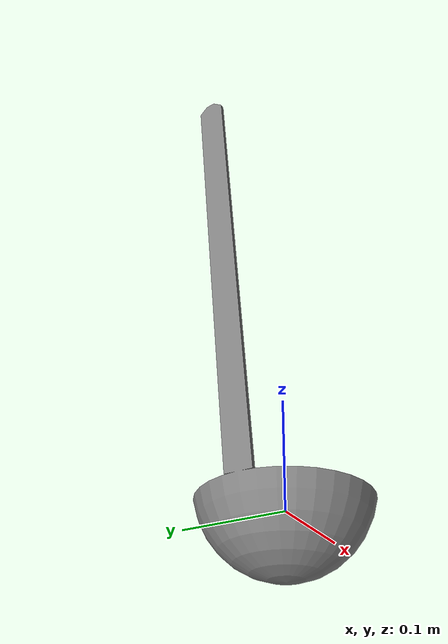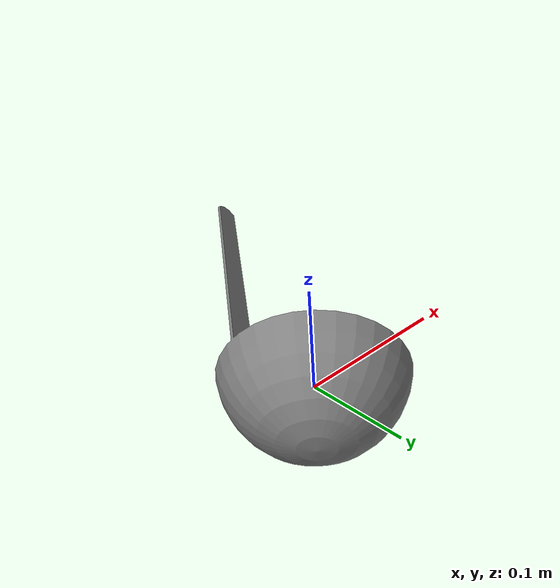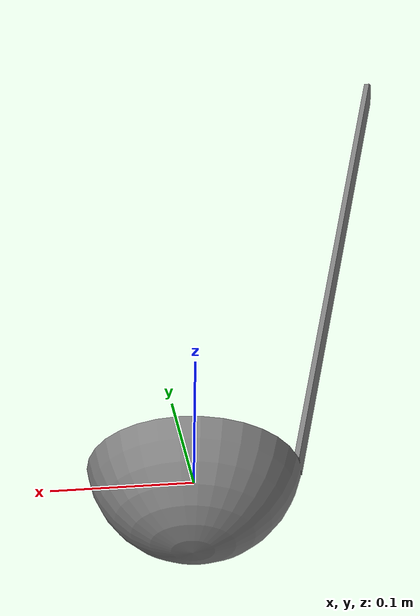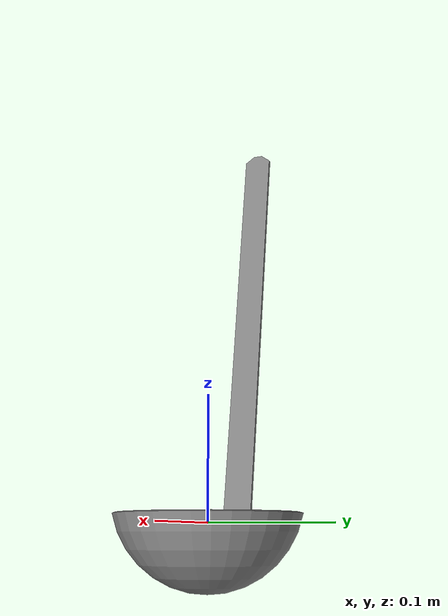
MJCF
<?xml version="1.0"?>
<mujoco model="soup_spoon">
    <compiler angle="radian" meshdir="../meshes/" texturedir="../textures/" autolimits="true" inertiafromgeom="false"/>
    <default>
        <default class="soup_spoon_visual">
            <geom contype="0" conaffinity="0" />
        </default>
        <default class="soup_spoon_collision">
            <geom rgba="0.9 0.9 0.9 0.0" />
        </default>
    </default>
    <asset>
        <mesh name="SoupSpoon" file="obj/SoupSpoon.obj" />
        <mesh name="SoupSpoon_001" file="stl/SoupSpoon_001.stl" />
        <mesh name="SoupSpoon_002" file="stl/SoupSpoon_002.stl" />
        <mesh name="SoupSpoon_003" file="stl/SoupSpoon_003.stl" />
        <mesh name="SoupSpoon_004" file="stl/SoupSpoon_004.stl" />
        <mesh name="SoupSpoon_005" file="stl/SoupSpoon_005.stl" />
        <mesh name="SoupSpoon_006" file="stl/SoupSpoon_006.stl" />
        <mesh name="SoupSpoon_007" file="stl/SoupSpoon_007.stl" />
        <mesh name="SoupSpoon_008" file="stl/SoupSpoon_008.stl" />
        <mesh name="SoupSpoon_009" file="stl/SoupSpoon_009.stl" />
        <mesh name="SoupSpoon_010" file="stl/SoupSpoon_010.stl" />
        <mesh name="SoupSpoon_011" file="stl/SoupSpoon_011.stl" />
        <mesh name="SoupSpoon_012" file="stl/SoupSpoon_012.stl" />
        <mesh name="SoupSpoon_013" file="stl/SoupSpoon_013.stl" />
        <mesh name="SoupSpoon_014" file="stl/SoupSpoon_014.stl" />
        <mesh name="SoupSpoon_015" file="stl/SoupSpoon_015.stl" />
        <mesh name="SoupSpoon_016" file="stl/SoupSpoon_016.stl" />
        <mesh name="SoupSpoon_017" file="stl/SoupSpoon_017.stl" />
        <mesh name="SoupSpoon_018" file="stl/SoupSpoon_018.stl" />
        <mesh name="SoupSpoon_019" file="stl/SoupSpoon_019.stl" />
        <mesh name="SoupSpoon_020" file="stl/SoupSpoon_020.stl" />
        <mesh name="SoupSpoon_021" file="stl/SoupSpoon_021.stl" />
        <mesh name="SoupSpoon_022" file="stl/SoupSpoon_022.stl" />
        <mesh name="SoupSpoon_023" file="stl/SoupSpoon_023.stl" />
        <mesh name="SoupSpoon_024" file="stl/SoupSpoon_024.stl" />
        <mesh name="SoupSpoon_025" file="stl/SoupSpoon_025.stl" />
        <mesh name="SoupSpoon_026" file="stl/SoupSpoon_026.stl" />
        <mesh name="SoupSpoon_027" file="stl/SoupSpoon_027.stl" />
        <mesh name="SoupSpoon_028" file="stl/SoupSpoon_028.stl" />
        <mesh name="SoupSpoon_029" file="stl/SoupSpoon_029.stl" />
        <mesh name="SoupSpoon_030" file="stl/SoupSpoon_030.stl" />
        <mesh name="SoupSpoon_031" file="stl/SoupSpoon_031.stl" />
        <mesh name="SoupSpoon_032" file="stl/SoupSpoon_032.stl" />
        <mesh name="SoupSpoon_033" file="stl/SoupSpoon_033.stl" />
        <mesh name="SoupSpoon_034" file="stl/SoupSpoon_034.stl" />
        <mesh name="SoupSpoon_035" file="stl/SoupSpoon_035.stl" />
        <mesh name="SoupSpoon_036" file="stl/SoupSpoon_036.stl" />
        <mesh name="SoupSpoon_037" file="stl/SoupSpoon_037.stl" />
        <mesh name="SoupSpoon_038" file="stl/SoupSpoon_038.stl" />
        <mesh name="SoupSpoon_039" file="stl/SoupSpoon_039.stl" />
        <mesh name="SoupSpoon_040" file="stl/SoupSpoon_040.stl" />
        <mesh name="SoupSpoon_041" file="stl/SoupSpoon_041.stl" />
        <mesh name="SoupSpoon_042" file="stl/SoupSpoon_042.stl" />
        <mesh name="SoupSpoon_043" file="stl/SoupSpoon_043.stl" />
        <mesh name="SoupSpoon_044" file="stl/SoupSpoon_044.stl" />
        <mesh name="SoupSpoon_045" file="stl/SoupSpoon_045.stl" />
        <mesh name="SoupSpoon_046" file="stl/SoupSpoon_046.stl" />
        <mesh name="SoupSpoon_047" file="stl/SoupSpoon_047.stl" />
        <mesh name="SoupSpoon_048" file="stl/SoupSpoon_048.stl" />
        <mesh name="SoupSpoon_049" file="stl/SoupSpoon_049.stl" />
        <mesh name="SoupSpoon_050" file="stl/SoupSpoon_050.stl" />
        <mesh name="SoupSpoon_051" file="stl/SoupSpoon_051.stl" />
        <mesh name="SoupSpoon_052" file="stl/SoupSpoon_052.stl" />
        <mesh name="SoupSpoon_053" file="stl/SoupSpoon_053.stl" />
        <mesh name="SoupSpoon_054" file="stl/SoupSpoon_054.stl" />
        <mesh name="SoupSpoon_055" file="stl/SoupSpoon_055.stl" />
        <mesh name="SoupSpoon_056" file="stl/SoupSpoon_056.stl" />
        <mesh name="SoupSpoon_057" file="stl/SoupSpoon_057.stl" />
        <mesh name="SoupSpoon_058" file="stl/SoupSpoon_058.stl" />
        <mesh name="SoupSpoon_059" file="stl/SoupSpoon_059.stl" />
        <mesh name="SoupSpoon_060" file="stl/SoupSpoon_060.stl" />
        <mesh name="SoupSpoon_061" file="stl/SoupSpoon_061.stl" />
        <mesh name="SoupSpoon_062" file="stl/SoupSpoon_062.stl" />
        <mesh name="SoupSpoon_063" file="stl/SoupSpoon_063.stl" />
        <mesh name="SoupSpoon_064" file="stl/SoupSpoon_064.stl" />
        <mesh name="SoupSpoon_065" file="stl/SoupSpoon_065.stl" />
        <mesh name="SoupSpoon_066" file="stl/SoupSpoon_066.stl" />
        <mesh name="SoupSpoon_067" file="stl/SoupSpoon_067.stl" />
        <mesh name="SoupSpoon_068" file="stl/SoupSpoon_068.stl" />
        <mesh name="SoupSpoon_069" file="stl/SoupSpoon_069.stl" />
        <mesh name="SoupSpoon_070" file="stl/SoupSpoon_070.stl" />
        <mesh name="SoupSpoon_071" file="stl/SoupSpoon_071.stl" />
        <mesh name="SoupSpoon_072" file="stl/SoupSpoon_072.stl" />
        <mesh name="SoupSpoon_073" file="stl/SoupSpoon_073.stl" />
        <mesh name="SoupSpoon_074" file="stl/SoupSpoon_074.stl" />
        <mesh name="SoupSpoon_075" file="stl/SoupSpoon_075.stl" />
        <mesh name="SoupSpoon_076" file="stl/SoupSpoon_076.stl" />
        <mesh name="SoupSpoon_077" file="stl/SoupSpoon_077.stl" />
        <mesh name="SoupSpoon_078" file="stl/SoupSpoon_078.stl" />
        <mesh name="SoupSpoon_079" file="stl/SoupSpoon_079.stl" />
        <mesh name="SoupSpoon_080" file="stl/SoupSpoon_080.stl" />
        <mesh name="SoupSpoon_081" file="stl/SoupSpoon_081.stl" />
        <mesh name="SoupSpoon_082" file="stl/SoupSpoon_082.stl" />
        <mesh name="SoupSpoon_083" file="stl/SoupSpoon_083.stl" />
        <mesh name="SoupSpoon_084" file="stl/SoupSpoon_084.stl" />
        <mesh name="SoupSpoon_085" file="stl/SoupSpoon_085.stl" />
        <mesh name="SoupSpoon_086" file="stl/SoupSpoon_086.stl" />
        <mesh name="SoupSpoon_087" file="stl/SoupSpoon_087.stl" />
        <mesh name="SoupSpoon_088" file="stl/SoupSpoon_088.stl" />
        <mesh name="SoupSpoon_089" file="stl/SoupSpoon_089.stl" />
        <mesh name="SoupSpoon_090" file="stl/SoupSpoon_090.stl" />
        <mesh name="SoupSpoon_091" file="stl/SoupSpoon_091.stl" />
        <mesh name="SoupSpoon_092" file="stl/SoupSpoon_092.stl" />
        <mesh name="SoupSpoon_093" file="stl/SoupSpoon_093.stl" />
        <mesh name="SoupSpoon_094" file="stl/SoupSpoon_094.stl" />
        <mesh name="SoupSpoon_095" file="stl/SoupSpoon_095.stl" />
        <mesh name="SoupSpoon_096" file="stl/SoupSpoon_096.stl" />
        <mesh name="SoupSpoon_097" file="stl/SoupSpoon_097.stl" />
        <mesh name="SoupSpoon_098" file="stl/SoupSpoon_098.stl" />
        <mesh name="SoupSpoon_099" file="stl/SoupSpoon_099.stl" />
        <mesh name="SoupSpoon_100" file="stl/SoupSpoon_100.stl" />
        <mesh name="SoupSpoon_101" file="stl/SoupSpoon_101.stl" />
        <mesh name="SoupSpoon_102" file="stl/SoupSpoon_102.stl" />
        <mesh name="SoupSpoon_103" file="stl/SoupSpoon_103.stl" />
        <mesh name="SoupSpoon_104" file="stl/SoupSpoon_104.stl" />
        <mesh name="SoupSpoon_105" file="stl/SoupSpoon_105.stl" />
        <mesh name="SoupSpoon_106" file="stl/SoupSpoon_106.stl" />
        <mesh name="SoupSpoon_107" file="stl/SoupSpoon_107.stl" />
        <mesh name="SoupSpoon_108" file="stl/SoupSpoon_108.stl" />
        <mesh name="SoupSpoon_109" file="stl/SoupSpoon_109.stl" />
        <mesh name="SoupSpoon_110" file="stl/SoupSpoon_110.stl" />
        <mesh name="SoupSpoon_111" file="stl/SoupSpoon_111.stl" />
        <mesh name="SoupSpoon_112" file="stl/SoupSpoon_112.stl" />
        <mesh name="SoupSpoon_113" file="stl/SoupSpoon_113.stl" />
        <mesh name="SoupSpoon_114" file="stl/SoupSpoon_114.stl" />
        <mesh name="SoupSpoon_115" file="stl/SoupSpoon_115.stl" />
        <mesh name="SoupSpoon_116" file="stl/SoupSpoon_116.stl" />
        <mesh name="SoupSpoon_117" file="stl/SoupSpoon_117.stl" />
        <mesh name="SoupSpoon_118" file="stl/SoupSpoon_118.stl" />
        <mesh name="SoupSpoon_119" file="stl/SoupSpoon_119.stl" />
        <mesh name="SoupSpoon_120" file="stl/SoupSpoon_120.stl" />
        <mesh name="SoupSpoon_121" file="stl/SoupSpoon_121.stl" />
        <mesh name="SoupSpoon_122" file="stl/SoupSpoon_122.stl" />
        <mesh name="SoupSpoon_123" file="stl/SoupSpoon_123.stl" />
        <mesh name="SoupSpoon_124" file="stl/SoupSpoon_124.stl" />
        <mesh name="SoupSpoon_125" file="stl/SoupSpoon_125.stl" />
        <mesh name="SoupSpoon_126" file="stl/SoupSpoon_126.stl" />
        <mesh name="SoupSpoon_127" file="stl/SoupSpoon_127.stl" />
        <mesh name="SoupSpoon_128" file="stl/SoupSpoon_128.stl" />
        <mesh name="SoupSpoon_129" file="stl/SoupSpoon_129.stl" />
        <mesh name="SoupSpoon_130" file="stl/SoupSpoon_130.stl" />
    </asset>
    <worldbody>
        <body name="soup_spoon" pos="0.0 0.0 0.0" quat="1.0 0.0 0.0 0.0" >
            <freejoint/>
            <inertial mass="0.014195333234965801" pos="-0.015411965548992157 -1.4716490248645187e-09 0.008130344562232494" quat="0.5998083353042603 0.5998082756996155 0.3744729161262512 -0.374472975730896" diaginertia="9.091835636354517e-06 5.7811525039142e-05 5.884267739020288e-05"/>
            <geom name="SoupSpoon" type="mesh" pos="0.0 0.0 0.0" quat="1.0 0.0 0.0 0.0" mesh="SoupSpoon" class="soup_spoon_visual"/>
            <geom name="SoupSpoon_001" type="mesh" pos="0.0 0.0 0.0" quat="1.0 0.0 0.0 0.0" mesh="SoupSpoon_001" class="soup_spoon_collision"/>
            <geom name="SoupSpoon_002" type="mesh" pos="0.0 0.0 0.0" quat="1.0 0.0 0.0 0.0" mesh="SoupSpoon_002" class="soup_spoon_collision"/>
            <geom name="SoupSpoon_003" type="mesh" pos="0.0 0.0 0.0" quat="1.0 0.0 0.0 0.0" mesh="SoupSpoon_003" class="soup_spoon_collision"/>
            <geom name="SoupSpoon_004" type="mesh" pos="0.0 0.0 0.0" quat="1.0 0.0 0.0 0.0" mesh="SoupSpoon_004" class="soup_spoon_collision"/>
            <geom name="SoupSpoon_005" type="mesh" pos="0.0 0.0 0.0" quat="1.0 0.0 0.0 0.0" mesh="SoupSpoon_005" class="soup_spoon_collision"/>
            <geom name="SoupSpoon_006" type="mesh" pos="0.0 0.0 0.0" quat="1.0 0.0 0.0 0.0" mesh="SoupSpoon_006" class="soup_spoon_collision"/>
            <geom name="SoupSpoon_007" type="mesh" pos="0.0 0.0 0.0" quat="1.0 0.0 0.0 0.0" mesh="SoupSpoon_007" class="soup_spoon_collision"/>
            <geom name="SoupSpoon_008" type="mesh" pos="0.0 0.0 0.0" quat="1.0 0.0 0.0 0.0" mesh="SoupSpoon_008" class="soup_spoon_collision"/>
            <geom name="SoupSpoon_009" type="mesh" pos="0.0 0.0 0.0" quat="1.0 0.0 0.0 0.0" mesh="SoupSpoon_009" class="soup_spoon_collision"/>
            <geom name="SoupSpoon_010" type="mesh" pos="0.0 0.0 0.0" quat="1.0 0.0 0.0 0.0" mesh="SoupSpoon_010" class="soup_spoon_collision"/>
            <geom name="SoupSpoon_011" type="mesh" pos="0.0 0.0 0.0" quat="1.0 0.0 0.0 0.0" mesh="SoupSpoon_011" class="soup_spoon_collision"/>
            <geom name="SoupSpoon_012" type="mesh" pos="0.0 0.0 0.0" quat="1.0 0.0 0.0 0.0" mesh="SoupSpoon_012" class="soup_spoon_collision"/>
            <geom name="SoupSpoon_013" type="mesh" pos="0.0 0.0 0.0" quat="1.0 0.0 0.0 0.0" mesh="SoupSpoon_013" class="soup_spoon_collision"/>
            <geom name="SoupSpoon_014" type="mesh" pos="0.0 0.0 0.0" quat="1.0 0.0 0.0 0.0" mesh="SoupSpoon_014" class="soup_spoon_collision"/>
            <geom name="SoupSpoon_015" type="mesh" pos="0.0 0.0 0.0" quat="1.0 0.0 0.0 0.0" mesh="SoupSpoon_015" class="soup_spoon_collision"/>
            <geom name="SoupSpoon_016" type="mesh" pos="0.0 0.0 0.0" quat="1.0 0.0 0.0 0.0" mesh="SoupSpoon_016" class="soup_spoon_collision"/>
            <geom name="SoupSpoon_017" type="mesh" pos="0.0 0.0 0.0" quat="1.0 0.0 0.0 0.0" mesh="SoupSpoon_017" class="soup_spoon_collision"/>
            <geom name="SoupSpoon_018" type="mesh" pos="0.0 0.0 0.0" quat="1.0 0.0 0.0 0.0" mesh="SoupSpoon_018" class="soup_spoon_collision"/>
            <geom name="SoupSpoon_019" type="mesh" pos="0.0 0.0 0.0" quat="1.0 0.0 0.0 0.0" mesh="SoupSpoon_019" class="soup_spoon_collision"/>
            <geom name="SoupSpoon_020" type="mesh" pos="0.0 0.0 0.0" quat="1.0 0.0 0.0 0.0" mesh="SoupSpoon_020" class="soup_spoon_collision"/>
            <geom name="SoupSpoon_021" type="mesh" pos="0.0 0.0 0.0" quat="1.0 0.0 0.0 0.0" mesh="SoupSpoon_021" class="soup_spoon_collision"/>
            <geom name="SoupSpoon_022" type="mesh" pos="0.0 0.0 0.0" quat="1.0 0.0 0.0 0.0" mesh="SoupSpoon_022" class="soup_spoon_collision"/>
            <geom name="SoupSpoon_023" type="mesh" pos="0.0 0.0 0.0" quat="1.0 0.0 0.0 0.0" mesh="SoupSpoon_023" class="soup_spoon_collision"/>
            <geom name="SoupSpoon_024" type="mesh" pos="0.0 0.0 0.0" quat="1.0 0.0 0.0 0.0" mesh="SoupSpoon_024" class="soup_spoon_collision"/>
            <geom name="SoupSpoon_025" type="mesh" pos="0.0 0.0 0.0" quat="1.0 0.0 0.0 0.0" mesh="SoupSpoon_025" class="soup_spoon_collision"/>
            <geom name="SoupSpoon_026" type="mesh" pos="0.0 0.0 0.0" quat="1.0 0.0 0.0 0.0" mesh="SoupSpoon_026" class="soup_spoon_collision"/>
            <geom name="SoupSpoon_027" type="mesh" pos="0.0 0.0 0.0" quat="1.0 0.0 0.0 0.0" mesh="SoupSpoon_027" class="soup_spoon_collision"/>
            <geom name="SoupSpoon_028" type="mesh" pos="0.0 0.0 0.0" quat="1.0 0.0 0.0 0.0" mesh="SoupSpoon_028" class="soup_spoon_collision"/>
            <geom name="SoupSpoon_029" type="mesh" pos="0.0 0.0 0.0" quat="1.0 0.0 0.0 0.0" mesh="SoupSpoon_029" class="soup_spoon_collision"/>
            <geom name="SoupSpoon_030" type="mesh" pos="0.0 0.0 0.0" quat="1.0 0.0 0.0 0.0" mesh="SoupSpoon_030" class="soup_spoon_collision"/>
            <geom name="SoupSpoon_031" type="mesh" pos="0.0 0.0 0.0" quat="1.0 0.0 0.0 0.0" mesh="SoupSpoon_031" class="soup_spoon_collision"/>
            <geom name="SoupSpoon_032" type="mesh" pos="0.0 0.0 0.0" quat="1.0 0.0 0.0 0.0" mesh="SoupSpoon_032" class="soup_spoon_collision"/>
            <geom name="SoupSpoon_033" type="mesh" pos="0.0 0.0 0.0" quat="1.0 0.0 0.0 0.0" mesh="SoupSpoon_033" class="soup_spoon_collision"/>
            <geom name="SoupSpoon_034" type="mesh" pos="0.0 0.0 0.0" quat="1.0 0.0 0.0 0.0" mesh="SoupSpoon_034" class="soup_spoon_collision"/>
            <geom name="SoupSpoon_035" type="mesh" pos="0.0 0.0 0.0" quat="1.0 0.0 0.0 0.0" mesh="SoupSpoon_035" class="soup_spoon_collision"/>
            <geom name="SoupSpoon_036" type="mesh" pos="0.0 0.0 0.0" quat="1.0 0.0 0.0 0.0" mesh="SoupSpoon_036" class="soup_spoon_collision"/>
            <geom name="SoupSpoon_037" type="mesh" pos="0.0 0.0 0.0" quat="1.0 0.0 0.0 0.0" mesh="SoupSpoon_037" class="soup_spoon_collision"/>
            <geom name="SoupSpoon_038" type="mesh" pos="0.0 0.0 0.0" quat="1.0 0.0 0.0 0.0" mesh="SoupSpoon_038" class="soup_spoon_collision"/>
            <geom name="SoupSpoon_039" type="mesh" pos="0.0 0.0 0.0" quat="1.0 0.0 0.0 0.0" mesh="SoupSpoon_039" class="soup_spoon_collision"/>
            <geom name="SoupSpoon_040" type="mesh" pos="0.0 0.0 0.0" quat="1.0 0.0 0.0 0.0" mesh="SoupSpoon_040" class="soup_spoon_collision"/>
            <geom name="SoupSpoon_041" type="mesh" pos="0.0 0.0 0.0" quat="1.0 0.0 0.0 0.0" mesh="SoupSpoon_041" class="soup_spoon_collision"/>
            <geom name="SoupSpoon_042" type="mesh" pos="0.0 0.0 0.0" quat="1.0 0.0 0.0 0.0" mesh="SoupSpoon_042" class="soup_spoon_collision"/>
            <geom name="SoupSpoon_043" type="mesh" pos="0.0 0.0 0.0" quat="1.0 0.0 0.0 0.0" mesh="SoupSpoon_043" class="soup_spoon_collision"/>
            <geom name="SoupSpoon_044" type="mesh" pos="0.0 0.0 0.0" quat="1.0 0.0 0.0 0.0" mesh="SoupSpoon_044" class="soup_spoon_collision"/>
            <geom name="SoupSpoon_045" type="mesh" pos="0.0 0.0 0.0" quat="1.0 0.0 0.0 0.0" mesh="SoupSpoon_045" class="soup_spoon_collision"/>
            <geom name="SoupSpoon_046" type="mesh" pos="0.0 0.0 0.0" quat="1.0 0.0 0.0 0.0" mesh="SoupSpoon_046" class="soup_spoon_collision"/>
            <geom name="SoupSpoon_047" type="mesh" pos="0.0 0.0 0.0" quat="1.0 0.0 0.0 0.0" mesh="SoupSpoon_047" class="soup_spoon_collision"/>
            <geom name="SoupSpoon_048" type="mesh" pos="0.0 0.0 0.0" quat="1.0 0.0 0.0 0.0" mesh="SoupSpoon_048" class="soup_spoon_collision"/>
            <geom name="SoupSpoon_049" type="mesh" pos="0.0 0.0 0.0" quat="1.0 0.0 0.0 0.0" mesh="SoupSpoon_049" class="soup_spoon_collision"/>
            <geom name="SoupSpoon_050" type="mesh" pos="0.0 0.0 0.0" quat="1.0 0.0 0.0 0.0" mesh="SoupSpoon_050" class="soup_spoon_collision"/>
            <geom name="SoupSpoon_051" type="mesh" pos="0.0 0.0 0.0" quat="1.0 0.0 0.0 0.0" mesh="SoupSpoon_051" class="soup_spoon_collision"/>
            <geom name="SoupSpoon_052" type="mesh" pos="0.0 0.0 0.0" quat="1.0 0.0 0.0 0.0" mesh="SoupSpoon_052" class="soup_spoon_collision"/>
            <geom name="SoupSpoon_053" type="mesh" pos="0.0 0.0 0.0" quat="1.0 0.0 0.0 0.0" mesh="SoupSpoon_053" class="soup_spoon_collision"/>
            <geom name="SoupSpoon_054" type="mesh" pos="0.0 0.0 0.0" quat="1.0 0.0 0.0 0.0" mesh="SoupSpoon_054" class="soup_spoon_collision"/>
            <geom name="SoupSpoon_055" type="mesh" pos="0.0 0.0 0.0" quat="1.0 0.0 0.0 0.0" mesh="SoupSpoon_055" class="soup_spoon_collision"/>
            <geom name="SoupSpoon_056" type="mesh" pos="0.0 0.0 0.0" quat="1.0 0.0 0.0 0.0" mesh="SoupSpoon_056" class="soup_spoon_collision"/>
            <geom name="SoupSpoon_057" type="mesh" pos="0.0 0.0 0.0" quat="1.0 0.0 0.0 0.0" mesh="SoupSpoon_057" class="soup_spoon_collision"/>
            <geom name="SoupSpoon_058" type="mesh" pos="0.0 0.0 0.0" quat="1.0 0.0 0.0 0.0" mesh="SoupSpoon_058" class="soup_spoon_collision"/>
            <geom name="SoupSpoon_059" type="mesh" pos="0.0 0.0 0.0" quat="1.0 0.0 0.0 0.0" mesh="SoupSpoon_059" class="soup_spoon_collision"/>
            <geom name="SoupSpoon_060" type="mesh" pos="0.0 0.0 0.0" quat="1.0 0.0 0.0 0.0" mesh="SoupSpoon_060" class="soup_spoon_collision"/>
            <geom name="SoupSpoon_061" type="mesh" pos="0.0 0.0 0.0" quat="1.0 0.0 0.0 0.0" mesh="SoupSpoon_061" class="soup_spoon_collision"/>
            <geom name="SoupSpoon_062" type="mesh" pos="0.0 0.0 0.0" quat="1.0 0.0 0.0 0.0" mesh="SoupSpoon_062" class="soup_spoon_collision"/>
            <geom name="SoupSpoon_063" type="mesh" pos="0.0 0.0 0.0" quat="1.0 0.0 0.0 0.0" mesh="SoupSpoon_063" class="soup_spoon_collision"/>
            <geom name="SoupSpoon_064" type="mesh" pos="0.0 0.0 0.0" quat="1.0 0.0 0.0 0.0" mesh="SoupSpoon_064" class="soup_spoon_collision"/>
            <geom name="SoupSpoon_065" type="mesh" pos="0.0 0.0 0.0" quat="1.0 0.0 0.0 0.0" mesh="SoupSpoon_065" class="soup_spoon_collision"/>
            <geom name="SoupSpoon_066" type="mesh" pos="0.0 0.0 0.0" quat="1.0 0.0 0.0 0.0" mesh="SoupSpoon_066" class="soup_spoon_collision"/>
            <geom name="SoupSpoon_067" type="mesh" pos="0.0 0.0 0.0" quat="1.0 0.0 0.0 0.0" mesh="SoupSpoon_067" class="soup_spoon_collision"/>
            <geom name="SoupSpoon_068" type="mesh" pos="0.0 0.0 0.0" quat="1.0 0.0 0.0 0.0" mesh="SoupSpoon_068" class="soup_spoon_collision"/>
            <geom name="SoupSpoon_069" type="mesh" pos="0.0 0.0 0.0" quat="1.0 0.0 0.0 0.0" mesh="SoupSpoon_069" class="soup_spoon_collision"/>
            <geom name="SoupSpoon_070" type="mesh" pos="0.0 0.0 0.0" quat="1.0 0.0 0.0 0.0" mesh="SoupSpoon_070" class="soup_spoon_collision"/>
            <geom name="SoupSpoon_071" type="mesh" pos="0.0 0.0 0.0" quat="1.0 0.0 0.0 0.0" mesh="SoupSpoon_071" class="soup_spoon_collision"/>
            <geom name="SoupSpoon_072" type="mesh" pos="0.0 0.0 0.0" quat="1.0 0.0 0.0 0.0" mesh="SoupSpoon_072" class="soup_spoon_collision"/>
            <geom name="SoupSpoon_073" type="mesh" pos="0.0 0.0 0.0" quat="1.0 0.0 0.0 0.0" mesh="SoupSpoon_073" class="soup_spoon_collision"/>
            <geom name="SoupSpoon_074" type="mesh" pos="0.0 0.0 0.0" quat="1.0 0.0 0.0 0.0" mesh="SoupSpoon_074" class="soup_spoon_collision"/>
            <geom name="SoupSpoon_075" type="mesh" pos="0.0 0.0 0.0" quat="1.0 0.0 0.0 0.0" mesh="SoupSpoon_075" class="soup_spoon_collision"/>
            <geom name="SoupSpoon_076" type="mesh" pos="0.0 0.0 0.0" quat="1.0 0.0 0.0 0.0" mesh="SoupSpoon_076" class="soup_spoon_collision"/>
            <geom name="SoupSpoon_077" type="mesh" pos="0.0 0.0 0.0" quat="1.0 0.0 0.0 0.0" mesh="SoupSpoon_077" class="soup_spoon_collision"/>
            <geom name="SoupSpoon_078" type="mesh" pos="0.0 0.0 0.0" quat="1.0 0.0 0.0 0.0" mesh="SoupSpoon_078" class="soup_spoon_collision"/>
            <geom name="SoupSpoon_079" type="mesh" pos="0.0 0.0 0.0" quat="1.0 0.0 0.0 0.0" mesh="SoupSpoon_079" class="soup_spoon_collision"/>
            <geom name="SoupSpoon_080" type="mesh" pos="0.0 0.0 0.0" quat="1.0 0.0 0.0 0.0" mesh="SoupSpoon_080" class="soup_spoon_collision"/>
            <geom name="SoupSpoon_081" type="mesh" pos="0.0 0.0 0.0" quat="1.0 0.0 0.0 0.0" mesh="SoupSpoon_081" class="soup_spoon_collision"/>
            <geom name="SoupSpoon_082" type="mesh" pos="0.0 0.0 0.0" quat="1.0 0.0 0.0 0.0" mesh="SoupSpoon_082" class="soup_spoon_collision"/>
            <geom name="SoupSpoon_083" type="mesh" pos="0.0 0.0 0.0" quat="1.0 0.0 0.0 0.0" mesh="SoupSpoon_083" class="soup_spoon_collision"/>
            <geom name="SoupSpoon_084" type="mesh" pos="0.0 0.0 0.0" quat="1.0 0.0 0.0 0.0" mesh="SoupSpoon_084" class="soup_spoon_collision"/>
            <geom name="SoupSpoon_085" type="mesh" pos="0.0 0.0 0.0" quat="1.0 0.0 0.0 0.0" mesh="SoupSpoon_085" class="soup_spoon_collision"/>
            <geom name="SoupSpoon_086" type="mesh" pos="0.0 0.0 0.0" quat="1.0 0.0 0.0 0.0" mesh="SoupSpoon_086" class="soup_spoon_collision"/>
            <geom name="SoupSpoon_087" type="mesh" pos="0.0 0.0 0.0" quat="1.0 0.0 0.0 0.0" mesh="SoupSpoon_087" class="soup_spoon_collision"/>
            <geom name="SoupSpoon_088" type="mesh" pos="0.0 0.0 0.0" quat="1.0 0.0 0.0 0.0" mesh="SoupSpoon_088" class="soup_spoon_collision"/>
            <geom name="SoupSpoon_089" type="mesh" pos="0.0 0.0 0.0" quat="1.0 0.0 0.0 0.0" mesh="SoupSpoon_089" class="soup_spoon_collision"/>
            <geom name="SoupSpoon_090" type="mesh" pos="0.0 0.0 0.0" quat="1.0 0.0 0.0 0.0" mesh="SoupSpoon_090" class="soup_spoon_collision"/>
            <geom name="SoupSpoon_091" type="mesh" pos="0.0 0.0 0.0" quat="1.0 0.0 0.0 0.0" mesh="SoupSpoon_091" class="soup_spoon_collision"/>
            <geom name="SoupSpoon_092" type="mesh" pos="0.0 0.0 0.0" quat="1.0 0.0 0.0 0.0" mesh="SoupSpoon_092" class="soup_spoon_collision"/>
            <geom name="SoupSpoon_093" type="mesh" pos="0.0 0.0 0.0" quat="1.0 0.0 0.0 0.0" mesh="SoupSpoon_093" class="soup_spoon_collision"/>
            <geom name="SoupSpoon_094" type="mesh" pos="0.0 0.0 0.0" quat="1.0 0.0 0.0 0.0" mesh="SoupSpoon_094" class="soup_spoon_collision"/>
            <geom name="SoupSpoon_095" type="mesh" pos="0.0 0.0 0.0" quat="1.0 0.0 0.0 0.0" mesh="SoupSpoon_095" class="soup_spoon_collision"/>
            <geom name="SoupSpoon_096" type="mesh" pos="0.0 0.0 0.0" quat="1.0 0.0 0.0 0.0" mesh="SoupSpoon_096" class="soup_spoon_collision"/>
            <geom name="SoupSpoon_097" type="mesh" pos="0.0 0.0 0.0" quat="1.0 0.0 0.0 0.0" mesh="SoupSpoon_097" class="soup_spoon_collision"/>
            <geom name="SoupSpoon_098" type="mesh" pos="0.0 0.0 0.0" quat="1.0 0.0 0.0 0.0" mesh="SoupSpoon_098" class="soup_spoon_collision"/>
            <geom name="SoupSpoon_099" type="mesh" pos="0.0 0.0 0.0" quat="1.0 0.0 0.0 0.0" mesh="SoupSpoon_099" class="soup_spoon_collision"/>
            <geom name="SoupSpoon_100" type="mesh" pos="0.0 0.0 0.0" quat="1.0 0.0 0.0 0.0" mesh="SoupSpoon_100" class="soup_spoon_collision"/>
            <geom name="SoupSpoon_101" type="mesh" pos="0.0 0.0 0.0" quat="1.0 0.0 0.0 0.0" mesh="SoupSpoon_101" class="soup_spoon_collision"/>
            <geom name="SoupSpoon_102" type="mesh" pos="0.0 0.0 0.0" quat="1.0 0.0 0.0 0.0" mesh="SoupSpoon_102" class="soup_spoon_collision"/>
            <geom name="SoupSpoon_103" type="mesh" pos="0.0 0.0 0.0" quat="1.0 0.0 0.0 0.0" mesh="SoupSpoon_103" class="soup_spoon_collision"/>
            <geom name="SoupSpoon_104" type="mesh" pos="0.0 0.0 0.0" quat="1.0 0.0 0.0 0.0" mesh="SoupSpoon_104" class="soup_spoon_collision"/>
            <geom name="SoupSpoon_105" type="mesh" pos="0.0 0.0 0.0" quat="1.0 0.0 0.0 0.0" mesh="SoupSpoon_105" class="soup_spoon_collision"/>
            <geom name="SoupSpoon_106" type="mesh" pos="0.0 0.0 0.0" quat="1.0 0.0 0.0 0.0" mesh="SoupSpoon_106" class="soup_spoon_collision"/>
            <geom name="SoupSpoon_107" type="mesh" pos="0.0 0.0 0.0" quat="1.0 0.0 0.0 0.0" mesh="SoupSpoon_107" class="soup_spoon_collision"/>
            <geom name="SoupSpoon_108" type="mesh" pos="0.0 0.0 0.0" quat="1.0 0.0 0.0 0.0" mesh="SoupSpoon_108" class="soup_spoon_collision"/>
            <geom name="SoupSpoon_109" type="mesh" pos="0.0 0.0 0.0" quat="1.0 0.0 0.0 0.0" mesh="SoupSpoon_109" class="soup_spoon_collision"/>
            <geom name="SoupSpoon_110" type="mesh" pos="0.0 0.0 0.0" quat="1.0 0.0 0.0 0.0" mesh="SoupSpoon_110" class="soup_spoon_collision"/>
            <geom name="SoupSpoon_111" type="mesh" pos="0.0 0.0 0.0" quat="1.0 0.0 0.0 0.0" mesh="SoupSpoon_111" class="soup_spoon_collision"/>
            <geom name="SoupSpoon_112" type="mesh" pos="0.0 0.0 0.0" quat="1.0 0.0 0.0 0.0" mesh="SoupSpoon_112" class="soup_spoon_collision"/>
            <geom name="SoupSpoon_113" type="mesh" pos="0.0 0.0 0.0" quat="1.0 0.0 0.0 0.0" mesh="SoupSpoon_113" class="soup_spoon_collision"/>
            <geom name="SoupSpoon_114" type="mesh" pos="0.0 0.0 0.0" quat="1.0 0.0 0.0 0.0" mesh="SoupSpoon_114" class="soup_spoon_collision"/>
            <geom name="SoupSpoon_115" type="mesh" pos="0.0 0.0 0.0" quat="1.0 0.0 0.0 0.0" mesh="SoupSpoon_115" class="soup_spoon_collision"/>
            <geom name="SoupSpoon_116" type="mesh" pos="0.0 0.0 0.0" quat="1.0 0.0 0.0 0.0" mesh="SoupSpoon_116" class="soup_spoon_collision"/>
            <geom name="SoupSpoon_117" type="mesh" pos="0.0 0.0 0.0" quat="1.0 0.0 0.0 0.0" mesh="SoupSpoon_117" class="soup_spoon_collision"/>
            <geom name="SoupSpoon_118" type="mesh" pos="0.0 0.0 0.0" quat="1.0 0.0 0.0 0.0" mesh="SoupSpoon_118" class="soup_spoon_collision"/>
            <geom name="SoupSpoon_119" type="mesh" pos="0.0 0.0 0.0" quat="1.0 0.0 0.0 0.0" mesh="SoupSpoon_119" class="soup_spoon_collision"/>
            <geom name="SoupSpoon_120" type="mesh" pos="0.0 0.0 0.0" quat="1.0 0.0 0.0 0.0" mesh="SoupSpoon_120" class="soup_spoon_collision"/>
            <geom name="SoupSpoon_121" type="mesh" pos="0.0 0.0 0.0" quat="1.0 0.0 0.0 0.0" mesh="SoupSpoon_121" class="soup_spoon_collision"/>
            <geom name="SoupSpoon_122" type="mesh" pos="0.0 0.0 0.0" quat="1.0 0.0 0.0 0.0" mesh="SoupSpoon_122" class="soup_spoon_collision"/>
            <geom name="SoupSpoon_123" type="mesh" pos="0.0 0.0 0.0" quat="1.0 0.0 0.0 0.0" mesh="SoupSpoon_123" class="soup_spoon_collision"/>
            <geom name="SoupSpoon_124" type="mesh" pos="0.0 0.0 0.0" quat="1.0 0.0 0.0 0.0" mesh="SoupSpoon_124" class="soup_spoon_collision"/>
            <geom name="SoupSpoon_125" type="mesh" pos="0.0 0.0 0.0" quat="1.0 0.0 0.0 0.0" mesh="SoupSpoon_125" class="soup_spoon_collision"/>
            <geom name="SoupSpoon_126" type="mesh" pos="0.0 0.0 0.0" quat="1.0 0.0 0.0 0.0" mesh="SoupSpoon_126" class="soup_spoon_collision"/>
            <geom name="SoupSpoon_127" type="mesh" pos="0.0 0.0 0.0" quat="1.0 0.0 0.0 0.0" mesh="SoupSpoon_127" class="soup_spoon_collision"/>
            <geom name="SoupSpoon_128" type="mesh" pos="0.0 0.0 0.0" quat="1.0 0.0 0.0 0.0" mesh="SoupSpoon_128" class="soup_spoon_collision"/>
            <geom name="SoupSpoon_129" type="mesh" pos="0.0 0.0 0.0" quat="1.0 0.0 0.0 0.0" mesh="SoupSpoon_129" class="soup_spoon_collision"/>
            <geom name="SoupSpoon_130" type="mesh" pos="0.0 0.0 0.0" quat="1.0 0.0 0.0 0.0" mesh="SoupSpoon_130" class="soup_spoon_collision"/>
        </body>
    </worldbody>
</mujoco>
